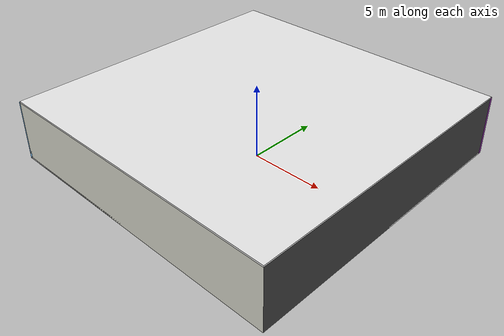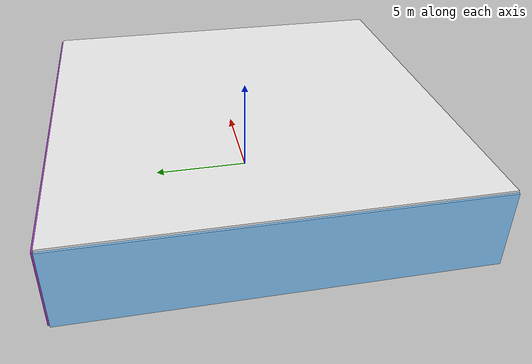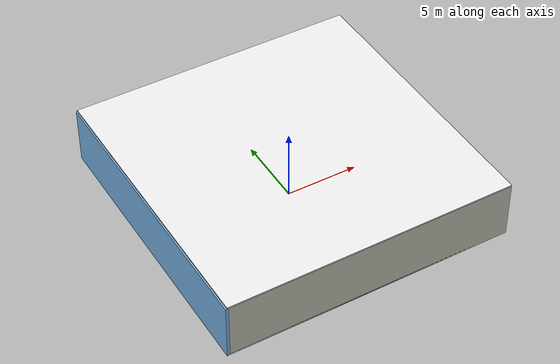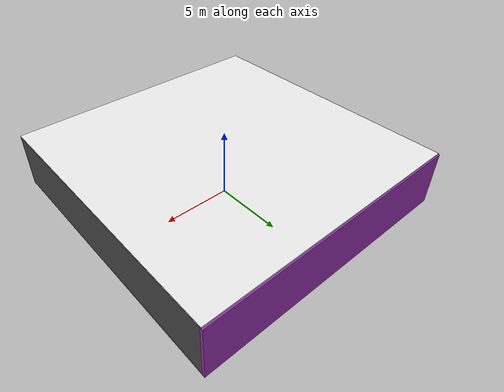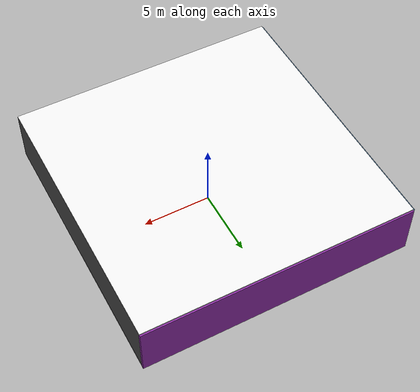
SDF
<sdf version="1.4">
 <world name="default">
  <physics type="ode">
   <max_step_size>0.001</max_step_size>
   <real_time_factor>1</real_time_factor>
   <real_time_update_rate>1000</real_time_update_rate>
   <gravity>0 0 -9.8</gravity>
  </physics>
  <scene><ambient>0.4 0.4 0.4 1</ambient><background>0.7 0.7 0.7 1</background><shadows>1</shadows></scene>
  <model name="Surrounding">
   <static>1</static>
   <link name="Ceiling">
    <collision name="Ceiling_Collision"><geometry><box><size>20 20 0.1</size></box></geometry></collision>
    <visual name="Ceiling_Visual">
     <geometry><box><size>20 20 0.1</size></box></geometry>
     <material>
      <script><uri>file://media/materials/scripts/gazebo.material</uri><name>Gazebo/White</name></script>
     </material>
    </visual>
    <pose>0 0 4.05 0 0 0</pose>
   </link>
   <link name="Wall_South">
    <collision name="Wall_South_Collision">
     <geometry><box><size>20 0 4</size></box></geometry>
     <pose>0 0 2 0 -0 0</pose>
    </collision>
    <visual name="Wall_South_Visual">
     <pose>0 0 2 0 -0 0</pose>
     <geometry><box><size>20 0 4</size></box></geometry>
     <material>
      <script><uri>file://media/materials/scripts/gazebo.material</uri><name>Gazebo/PaintedWall</name></script>
     </material>
    </visual>
    <velocity_decay><linear>0</linear><angular>0</angular></velocity_decay>
    <pose>0 -10 0 0 -0 0</pose>
   </link>
   <link name="Wall_East">
    <collision name="Wall_21_Collision">
     <geometry><box><size>20 0 4</size></box></geometry>
     <pose>0 0 2 0 -0 0</pose>
    </collision>
    <visual name="Wall_21_Visual">
     <pose>0 0 2 0 -0 0</pose>
     <geometry><box><size>20 0 4</size></box></geometry>
     <material>
      <script><uri>file://media/materials/scripts/gazebo.material</uri><name>Gazebo/DarkGrey</name></script>
     </material>
    </visual>
    <velocity_decay><linear>0</linear><angular>0</angular></velocity_decay>
    <pose>10 0 0 0 -0 1.5708</pose>
   </link>
   <link name="Wall_North">
    <collision name="Wall_22_Collision">
     <geometry><box><size>20 0.2 4</size></box></geometry>
     <pose>0 0 2 0 -0 0</pose>
    </collision>
    <visual name="Wall_22_Visual">
     <pose>0 0 2 0 -0 0</pose>
     <geometry><box><size>20 0.2 4</size></box></geometry>
     <material>
      <script><uri>file://media/materials/scripts/gazebo.material</uri><name>Gazebo/PurpleGlow</name></script>
     </material>
    </visual>
    <velocity_decay><linear>0</linear><angular>0</angular></velocity_decay>
    <pose>0 10 0 0 -0 0</pose>
   </link>
   <link name="Wall_West">
    <collision name="Wall_23_Collision">
     <geometry><box><size>20 0.2 4</size></box></geometry>
     <pose>0 0 2 0 -0 0</pose>
    </collision>
    <visual name="Wall_23_Visual">
     <pose>0 0 2 0 -0 0</pose>
     <geometry><box><size>20 0.2 4</size></box></geometry>
     <material>
      <script><uri>file://media/materials/scripts/gazebo.material</uri><name>Gazebo/SkyBlue</name></script>
     </material>
    </visual>
    <velocity_decay><linear>0</linear><angular>0</angular></velocity_decay>
    <pose>-10 0 0 0 0 -1.5708</pose>
   </link>
   <link name="Ground_link">
    <collision name="collision">
     <pose>0 0 .05 0 -0 0</pose>
     <geometry><box><size>20 20 0.1</size></box></geometry>
    </collision>
    <visual name="visual">
     <pose>0 0 .05 0 -0 0</pose>
     <geometry><box><size>20 20 0.1</size></box></geometry>
     <material>
      <script><uri>file://media/materials/scripts/gazebo.material</uri><name>Gazebo/White</name></script>
     </material>
    </visual>
   </link>
   <static>1</static>
  </model>
  <spherical_coordinates>
   <surface_model>EARTH_WGS84</surface_model>
   <latitude_deg>0</latitude_deg>
   <longitude_deg>0</longitude_deg>
   <elevation>0</elevation>
   <heading_deg>0</heading_deg>
  </spherical_coordinates>
  <light name="lightball_0" type="diffuse">
   <diffuse>0.8 0.8 0.8 1</diffuse>
   <specular>0.2 0.2 0.2 1</specular>
   <attenuation>
    <range>100</range>
    <constant>0.7</constant>
    <linear>0.01</linear>
    <quadratic>0.001</quadratic>
   </attenuation>
   <direction>-0.5 0.1 -0.9</direction>
   <pose>1.95264226209 4.23661079545 0.576681207581 0 0 0</pose>
  </light>
  <light name="lightball_1" type="diffuse">
   <diffuse>0.8 0.8 0.8 1</diffuse>
   <specular>0.2 0.2 0.2 1</specular>
   <attenuation>
    <range>100</range>
    <constant>0.7</constant>
    <linear>0.01</linear>
    <quadratic>0.001</quadratic>
   </attenuation>
   <direction>-0.5 0.1 -0.9</direction>
   <pose>1.68339898462 -4.98453130491 2.1244729728 0 0 0</pose>
  </light>
  <light name="lightball_2" type="diffuse">
   <diffuse>0.8 0.8 0.8 1</diffuse>
   <specular>0.2 0.2 0.2 1</specular>
   <attenuation>
    <range>100</range>
    <constant>0.7</constant>
    <linear>0.01</linear>
    <quadratic>0.001</quadratic>
   </attenuation>
   <direction>-0.5 0.1 -0.9</direction>
   <pose>-1.18513364929 -4.56990718588 1.17057915565 0 0 0</pose>
  </light>
  <light name="lightball_3" type="diffuse">
   <diffuse>0.8 0.8 0.8 1</diffuse>
   <specular>0.2 0.2 0.2 1</specular>
   <attenuation>
    <range>100</range>
    <constant>0.7</constant>
    <linear>0.01</linear>
    <quadratic>0.001</quadratic>
   </attenuation>
   <direction>-0.5 0.1 -0.9</direction>
   <pose>-3.8818803949 -9.49991379165 2.03487899052 0 0 0</pose>
  </light>
  <light name="lightball_4" type="diffuse">
   <diffuse>0.8 0.8 0.8 1</diffuse>
   <specular>0.2 0.2 0.2 1</specular>
   <attenuation>
    <range>100</range>
    <constant>0.7</constant>
    <linear>0.01</linear>
    <quadratic>0.001</quadratic>
   </attenuation>
   <direction>-0.5 0.1 -0.9</direction>
   <pose>-5.12189424974 6.60449022751 3.28045122512 0 0 0</pose>
  </light>
  <light name="lightball_5" type="diffuse">
   <diffuse>0.8 0.8 0.8 1</diffuse>
   <specular>0.2 0.2 0.2 1</specular>
   <attenuation>
    <range>100</range>
    <constant>0.7</constant>
    <linear>0.01</linear>
    <quadratic>0.001</quadratic>
   </attenuation>
   <direction>-0.5 0.1 -0.9</direction>
   <pose>5.73454323684 -8.48004426456 2.89713881057 0 0 0</pose>
  </light>
  <light name="lightball_6" type="diffuse">
   <diffuse>0.8 0.8 0.8 1</diffuse>
   <specular>0.2 0.2 0.2 1</specular>
   <attenuation>
    <range>100</range>
    <constant>0.7</constant>
    <linear>0.01</linear>
    <quadratic>0.001</quadratic>
   </attenuation>
   <direction>-0.5 0.1 -0.9</direction>
   <pose>4.70616365091 6.11283609133 2.1597345512 0 0 0</pose>
  </light>
  <include>
   <uri>model://robocup_3Dsim_goal</uri>
   <pose>-7.0611999723 4.82111439592 0 0 0 3.12572456748</pose>
  </include>
  <include><uri>model://cabinet</uri><pose>4.675067083 7.671313625 0 0 0 0.0613699045163</pose></include>
  <include><uri>model://cabinet</uri><pose>7.29989247569 -7.33583764733 0 0 0 2.89476103267</pose></include>
 </world>
</sdf>

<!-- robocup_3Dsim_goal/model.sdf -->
<sdf version="1.5">
  <model name="robocup_3d_goal">
    <static>true</static>
    <link name="left_post">
      <pose>0 1.05 0.45 0 0 0</pose>
      <collision name="collision">
        <geometry>
          <cylinder>
            <radius>0.05</radius>
            <length>0.9</length>
          </cylinder>
        </geometry>
      </collision>
      <visual name="visual">
        <geometry>
          <cylinder>
            <radius>0.05</radius>
            <length>0.9</length>
          </cylinder>
        </geometry>
        <material>
          <script>
            <uri>file://media/materials/scripts/gazebo.material</uri>
            <name>Gazebo/ZincYellow</name>
          </script>
        </material>
      </visual>
    </link>
    <link name="left_support_horiz_lower">
      <pose>0.30 1.05 0.01 0 0 0</pose>
      <collision name="collision">
        <geometry>
          <box>
            <size>0.50 0.02 0.02</size>
          </box>
        </geometry>
      </collision>
      <visual name="visual">
        <geometry>
          <box>
            <size>0.50 0.02 0.02</size>
          </box>
        </geometry>
        <material>
          <script>
            <uri>file://media/materials/scripts/gazebo.material</uri>
            <name>Gazebo/White</name>
          </script>
        </material>
      </visual>
    </link>
    <link name="left_support_horiz_upper">
      <pose>0.30 1.05 0.79 0 0 0</pose>
      <collision name="collision">
        <geometry>
          <box>
            <size>0.50 0.02 0.02</size>
          </box>
        </geometry>
      </collision>
      <visual name="visual">
        <geometry>
          <box>
            <size>0.50 0.02 0.02</size>
          </box>
        </geometry>
        <material>
          <script>
            <uri>file://media/materials/scripts/gazebo.material</uri>
            <name>Gazebo/White</name>
          </script>
        </material>
      </visual>
    </link>
    <link name="left_support_vertical">
      <pose>0.56 1.05 0.4 0 1.5708 0</pose>
      <collision name="collision">
        <geometry>
          <box>
            <size>0.80 0.02 0.02</size>
          </box>
        </geometry>
      </collision>
      <visual name="visual">
        <geometry>
          <box>
            <size>0.80 0.02 0.02</size>
          </box>
        </geometry>
        <material>
          <script>
            <uri>file://media/materials/scripts/gazebo.material</uri>
            <name>Gazebo/White</name>
          </script>
        </material>
      </visual>
    </link>
    <link name="right_support_horiz_lower">
      <pose>0.30 -1.05 0.01 0 0 0</pose>
      <collision name="collision">
        <geometry>
          <box>
            <size>0.50 0.02 0.02</size>
          </box>
        </geometry>
      </collision>
      <visual name="visual">
        <geometry>
          <box>
            <size>0.50 0.02 0.02</size>
          </box>
        </geometry>
        <material>
          <script>
            <uri>file://media/materials/scripts/gazebo.material</uri>
            <name>Gazebo/White</name>
          </script>
        </material>
      </visual>
    </link>
    <link name="right_support_horiz_upper">
      <pose>0.30 -1.05 0.79 0 0 0</pose>
      <collision name="collision">
        <geometry>
          <box>
            <size>0.50 0.02 0.02</size>
          </box>
        </geometry>
      </collision>
      <visual name="visual">
        <geometry>
          <box>
            <size>0.50 0.02 0.02</size>
          </box>
        </geometry>
        <material>
          <script>
            <uri>file://media/materials/scripts/gazebo.material</uri>
            <name>Gazebo/White</name>
          </script>
        </material>
      </visual>
    </link>
    <link name="right_support_vertical">
      <pose>0.56 -1.05 0.4 0 1.5708 0</pose>
      <collision name="collision">
        <geometry>
          <box>
            <size>0.80 0.02 0.02</size>
          </box>
        </geometry>
      </collision>
      <visual name="visual">
        <geometry>
          <box>
            <size>0.80 0.02 0.02</size>
          </box>
        </geometry>
        <material>
          <script>
            <uri>file://media/materials/scripts/gazebo.material</uri>
            <name>Gazebo/White</name>
          </script>
        </material>
      </visual>
    </link>
    <link name="center_support_horiz_lower">
      <pose>0.56 0 0.01 0 1.5708 0</pose>
      <collision name="collision">
        <geometry>
          <box>
            <size>0.02 2.08 0.02</size>
          </box>
        </geometry>
      </collision>
      <visual name="visual">
        <geometry>
          <box>
            <size>0.02 2.08 0.02</size>
          </box>
        </geometry>
        <material>
          <script>
            <uri>file://media/materials/scripts/gazebo.material</uri>
            <name>Gazebo/White</name>
          </script>
        </material>
      </visual>
    </link>
    <link name="center_support_horiz_upper">
      <pose>0.56 0 0.79 0 1.5708 0</pose>
      <collision name="collision">
        <geometry>
          <box>
            <size>0.02 2.08 0.02</size>
          </box>
        </geometry>
      </collision>
      <visual name="visual">
        <geometry>
          <box>
            <size>0.02 2.08 0.02</size>
          </box>
        </geometry>
        <material>
          <script>
            <uri>file://media/materials/scripts/gazebo.material</uri>
            <name>Gazebo/White</name>
          </script>
        </material>
      </visual>
    </link>
    <link name="right_post">
      <pose>0 -1.05 0.45 0 0 0</pose>
      <collision name="collision">
        <geometry>
          <cylinder>
            <radius>0.05</radius>
            <length>0.9</length>
          </cylinder>
        </geometry>
      </collision>
      <visual name="visual">
        <geometry>
          <cylinder>
            <radius>0.05</radius>
            <length>0.9</length>
          </cylinder>
        </geometry>
        <material>
          <script>
            <uri>file://media/materials/scripts/gazebo.material</uri>
            <name>Gazebo/ZincYellow</name>
          </script>
        </material>
      </visual>
    </link>
    <link name="crossbar">
      <pose>0 0 0.85 1.57 1.57 0</pose>
      <collision name="collision">
        <geometry>
          <cylinder>
            <radius>0.05</radius>
            <length>2.0</length>
          </cylinder>
        </geometry>
      </collision>
      <visual name="visual">
        <geometry>
          <cylinder>
            <radius>0.05</radius>
            <length>2.0</length>
          </cylinder>
        </geometry>
        <material>
          <script>
            <uri>file://media/materials/scripts/gazebo.material</uri>
            <name>Gazebo/ZincYellow</name>
          </script>
        </material>
      </visual>
    </link>
    <link name="center_net">
      <pose>0.56 0 0.40 0 0 0</pose>
      <collision name="collision">
        <geometry>
          <box>
            <size>0.01 2.1 0.80</size>
          </box>
        </geometry>
      </collision>
      <visual name="visual">
        <geometry>
          <box>
            <size>0.01 2.1 0.80</size>
          </box>
        </geometry>
        <material>
          <script>
            <uri>model://../model_source/models/robocup09_spl_field/materials/scripts/</uri>
            <uri>model://../model_source/models/robocup09_spl_field/materials/textures/</uri>
            <name>RoboCup/Net</name>
          </script>
        </material>
      </visual>
    </link>
    <link name="left_net">
      <pose>0.30 1.05 0.40 0 0 0</pose>
      <collision name="collision">
        <geometry>
          <box>
            <size>0.50 0.01 0.76</size>
          </box>
        </geometry>
      </collision>
      <visual name="visual">
        <geometry>
          <box>
            <size>0.50 0.01 0.76</size>
          </box>
        </geometry>
        <material>
          <script>
            <uri>model://../model_source/models/robocup09_spl_field/materials/scripts/</uri>
            <uri>model://../model_source/models/robocup09_spl_field/materials/textures/</uri>
            <name>RoboCup/Net</name>
          </script>
        </material>
      </visual>
    </link>
    <link name="right_net">
      <pose>0.30 -1.05 0.40 0 0 0</pose>
      <collision name="collision">
        <geometry>
          <box>
            <size>0.50 0.01 0.76</size>
          </box>
        </geometry>
      </collision>
      <visual name="visual">
        <geometry>
          <box>
            <size>0.50 0.01 0.76</size>
          </box>
        </geometry>
        <material>
          <script>
            <uri>model://../model_source/models/robocup09_spl_field/materials/scripts/</uri>
            <uri>model://../model_source/models/robocup09_spl_field/materials/textures/</uri>
            <name>RoboCup/Net</name>
          </script>
        </material>
      </visual>
    </link>
  </model>
</sdf>

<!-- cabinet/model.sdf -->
<sdf version="1.5">
  <model name="cabinet">
    <static>true</static>
    <link name="cabinet_bottom_plate">
      <inertial>
        <pose>0 0 -1 0 0 0</pose>
        <inertia>
          <ixx>2.050000</ixx>
          <ixy>0</ixy>
          <ixz>0</ixz>
          <iyy>2.050000</iyy>
          <iyz>0</iyz>
          <izz>2.050000</izz>
        </inertia>
        <mass>25.000000</mass>
      </inertial>
      <collision name="cabinet_bottom_plate_geom">
        <pose>0 0 0.010000 0 0 0</pose>
        <geometry>
          <box>
            <size>0.450000 0.450000 0.020000</size>
          </box>
        </geometry>
      </collision>
      <visual name="cabinet_bottom_plate_geom_visual">
        <pose>0 0 0.010000 0 0 0</pose>
        <geometry>
          <box>
            <size>0.450000 0.450000 0.020000</size>
          </box>
        </geometry>
        <material>
          <script>
            <uri>model://media/materials/scripts/gazebo.material</uri>
            <name>Gazebo/Wood</name>
          </script>
        </material>
      </visual>
      <collision name="cabinet_bottom_plate_geom_cabinet_back_plate">
        <pose>0.235000 0 0.510000 0 0 0</pose>
        <geometry>
          <box>
            <size>0.020000 0.450000 1.020000</size>
          </box>
        </geometry>
      </collision>
      <visual name="cabinet_bottom_plate_geom_cabinet_back_plate_visual">
        <pose>0.235000 0 0.510000 0 0 0</pose>
        <geometry>
          <box>
            <size>0.020000 0.450000 1.020000</size>
          </box>
        </geometry>
        <material>
          <script>
            <uri>model://media/materials/scripts/gazebo.material</uri>
            <name>Gazebo/Wood</name>
          </script>
        </material>
      </visual>
      <collision name="cabinet_bottom_plate_geom_cabinet_left_plate">
        <pose>0 0.235000 0.510000 0 0 0</pose>
        <geometry>
          <box>
            <size>0.450000 0.020000 1.020000</size>
          </box>
        </geometry>
      </collision>
      <visual name="cabinet_bottom_plate_geom_cabinet_left_plate_visual">
        <pose>0 0.235000 0.510000 0 0 0</pose>
        <geometry>
          <box>
            <size>0.450000 0.020000 1.020000</size>
          </box>
        </geometry>
        <material>
          <script>
            <uri>model://media/materials/scripts/gazebo.material</uri>
            <name>Gazebo/Wood</name>
          </script>
        </material>
      </visual>
      <collision name="cabinet_bottom_plate_geom_cabinet_middle_plate">
        <pose>0 0 0.510000 0 0 0</pose>
        <geometry>
          <box>
            <size>0.450000 0.450000 0.020000</size>
          </box>
        </geometry>
      </collision>
      <visual name="cabinet_bottom_plate_geom_cabinet_middle_plate_visual">
        <pose>0 0 0.510000 0 0 0</pose>
        <geometry>
          <box>
            <size>0.450000 0.450000 0.020000</size>
          </box>
        </geometry>
        <material>
          <script>
            <uri>model://media/materials/scripts/gazebo.material</uri>
            <name>Gazebo/Wood</name>
          </script>
        </material>
      </visual>
      <collision name="cabinet_bottom_plate_geom_cabinet_right_plate">
        <pose>0 -0.235000 0.510000 0 0 0</pose>
        <geometry>
          <box>
            <size>0.450000 0.020000 1.020000</size>
          </box>
        </geometry>
      </collision>
      <visual name="cabinet_bottom_plate_geom_cabinet_right_plate_visual">
        <pose>0 -0.235000 0.510000 0 0 0</pose>
        <geometry>
          <box>
            <size>0.450000 0.020000 1.020000</size>
          </box>
        </geometry>
        <material>
          <script>
            <uri>model://media/materials/scripts/gazebo.material</uri>
            <name>Gazebo/Wood</name>
          </script>
        </material>
      </visual>
      <collision name="cabinet_bottom_plate_geom_cabinet_top_plate">
        <pose>0 0 1.010000 0 0 0</pose>
        <geometry>
          <box>
            <size>0.450000 0.450000 0.020000</size>
          </box>
        </geometry>
      </collision>
      <visual name="cabinet_bottom_plate_geom_cabinet_top_plate_visual">
        <pose>0 0 1.010000 0 0 0</pose>
        <geometry>
          <box>
            <size>0.450000 0.450000 0.020000</size>
          </box>
        </geometry>
        <material>
          <script>
            <uri>model://media/materials/scripts/gazebo.material</uri>
            <name>Gazebo/Wood</name>
          </script>
        </material>
      </visual>
    </link>
  </model>
</sdf>
